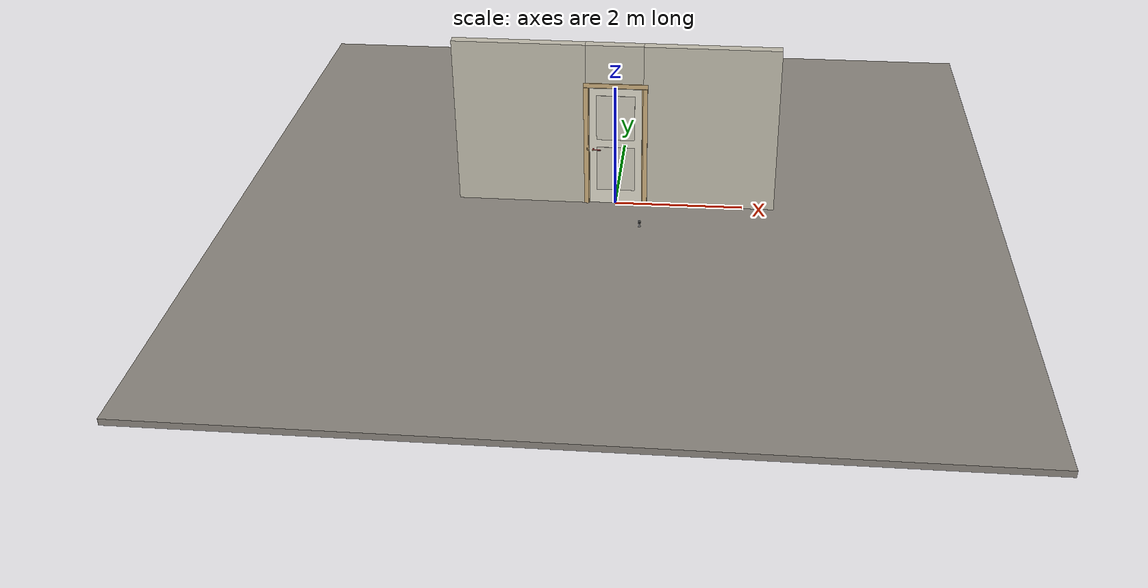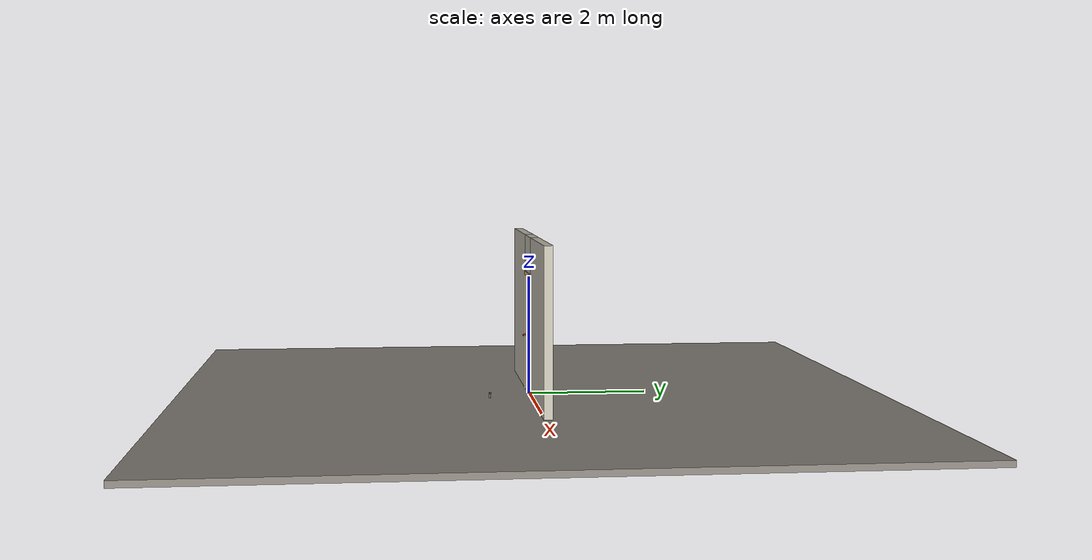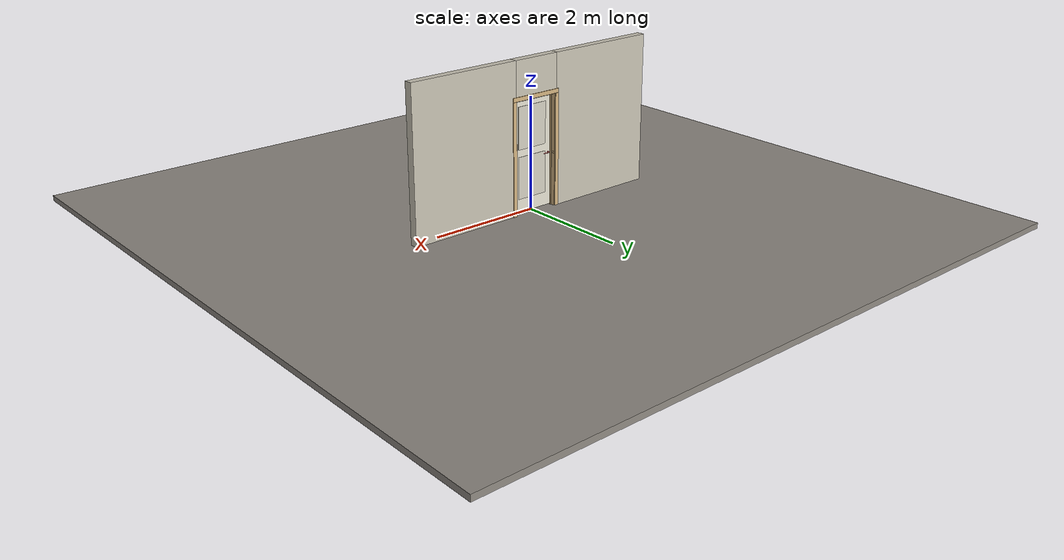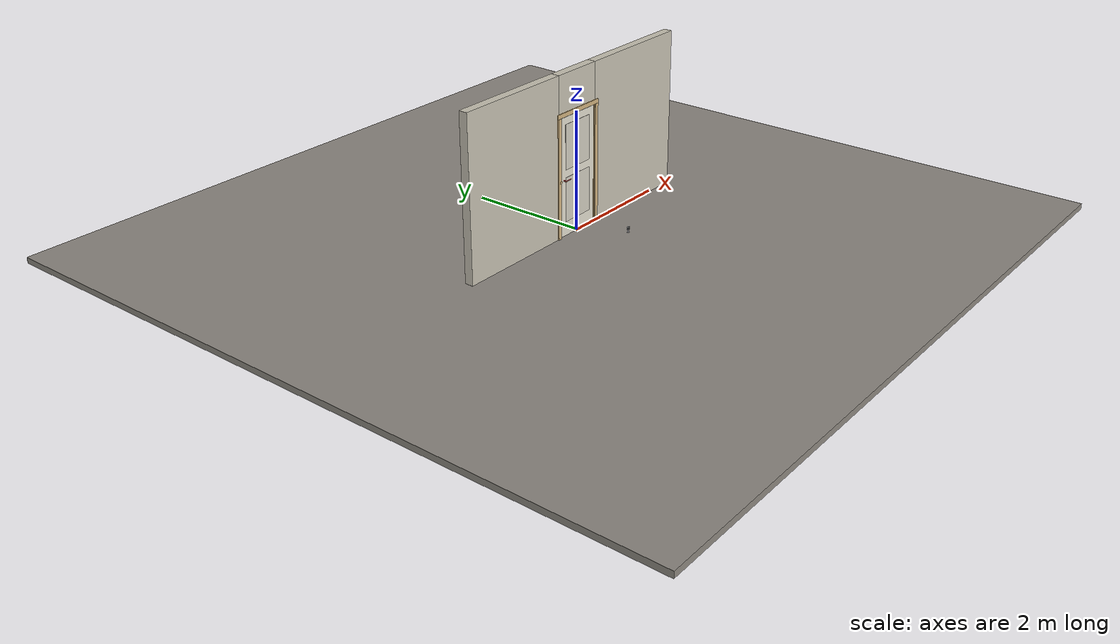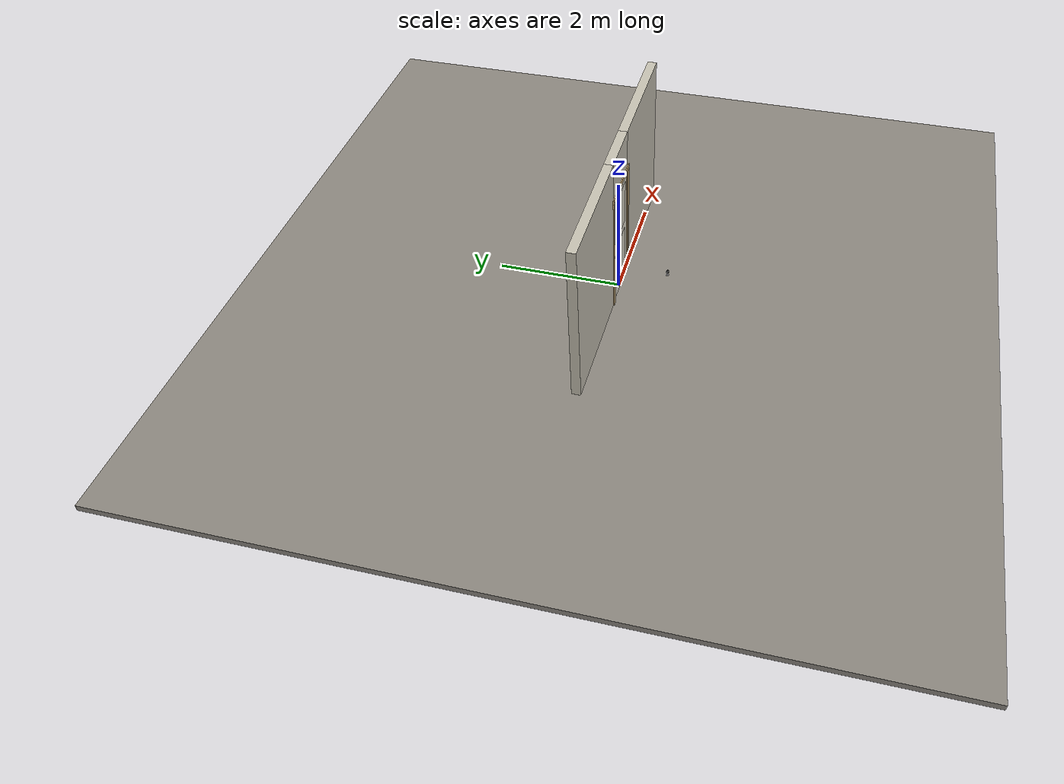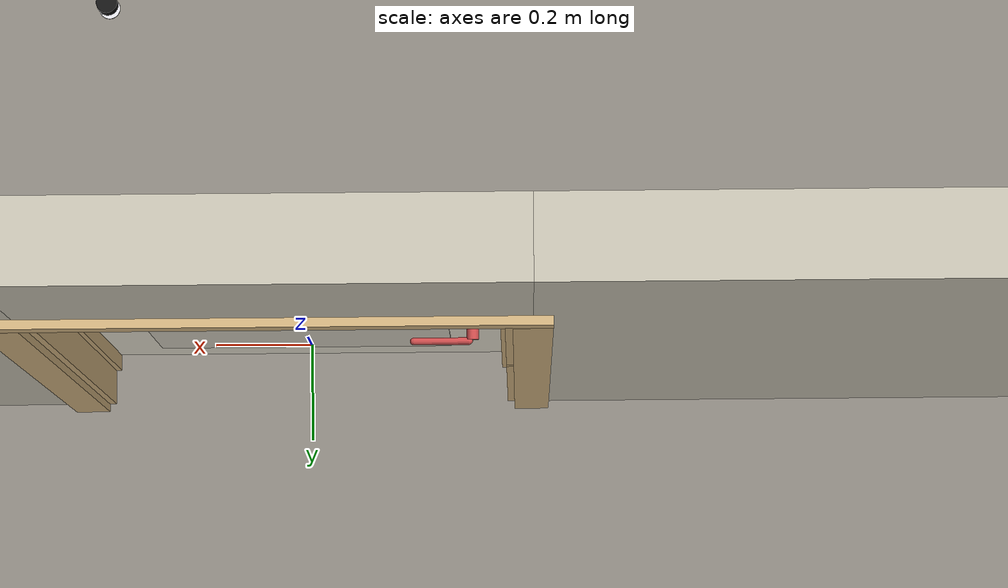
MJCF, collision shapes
<?xml version="1.0" ?>
<mujoco model="db0394_swing_single_full">
  <compiler angle="radian" meshdir="../../hardware" texturedir="../../textures" autolimits="true" inertiafromgeom="false"/>
  <option timestep="0.002" integrator="implicitfast" cone="elliptic" impratio="10" noslip_iterations="3">
    <flag multiccd="enable"/>
  </option>
  <size memory="16M"/>
  <default>
    <geom condim="4" solref="0.005 1" solimp="0.95 0.99 0.001"/>
    <joint solreflimit="0.005 1" solimplimit="0.95 0.99 0.001"/>
    <tendon solreflimit="0.005 1"/>
    <equality solref="0.002 1"/>
  </default>
  <visual>
    <headlight ambient="0.4 0.4 0.4" diffuse="0.7 0.7 0.7" specular="0.2 0.2 0.2"/>
    <quality shadowsize="4096"/>
    <map znear="0.01" zfar="60"/>
  </visual>
  <asset>
    <mesh name="hinge_e3fd49fe13" file="hinge_e3fd49fe13.obj"/>
    <mesh name="hinge_jamb_e47eb19c39" file="hinge_jamb_e47eb19c39.obj"/>
    <mesh name="lever_57205841c3" file="lever_57205841c3.obj"/>
    <material name="mat_floor" rgba="0.55 0.53 0.5 1" specular="0.2" shininess="0.15" reflectance="0"/>
    <material name="mat_wall" rgba="0.78 0.76 0.7 1" specular="0.2" shininess="0.1" reflectance="0"/>
    <material name="mat_leaf" rgba="0.9 0.88 0.82 1" specular="0.2" shininess="0.63" reflectance="0"/>
    <material name="mat_leaf_panel" rgba="0.828 0.81 0.754 1" specular="0.2" shininess="0.63" reflectance="0"/>
    <material name="mat_hinge" rgba="0.65 0.66 0.68 1" specular="0.74" shininess="0.5" reflectance="0.36"/>
    <material name="mat_op_black_matte_metal" rgba="0.05 0.05 0.05 1" specular="0.38" shininess="0.3" reflectance="0.12"/>
    <material name="mat_trim" rgba="0.85 0.66 0.3 1" specular="0.8" shininess="0.75" reflectance="0.4"/>
    <material name="mat_bolt" rgba="0.85 0.66 0.3 1" specular="0.8" shininess="0.75" reflectance="0.4"/>
    <material name="mat_frame" rgba="0.82 0.7 0.5 1" specular="0.2" shininess="0.45" reflectance="0"/>
    <material name="mat_bumper_stop" rgba="0.08 0.08 0.08 1" specular="0.2" shininess="0.1" reflectance="0"/>
    <material name="mat_stop_base" rgba="0.9 0.9 0.92 1" specular="0.8" shininess="0.9" reflectance="0.4"/>
    <texture name="skybox" type="skybox" builtin="gradient" rgb1="0.6 0.7 0.85" rgb2="0.9 0.92 0.95" width="256" height="256"/>
  </asset>
  <worldbody>
    <light name="sun" pos="1.5 -2.5 4" dir="-0.3 0.5 -0.8" directional="true" diffuse="0.8 0.8 0.8" specular="0.3 0.3 0.3" castshadow="true"/>
    <light name="fill" pos="-1.5 2.5 3" dir="0.3 -0.5 -0.7" directional="true" diffuse="0.35 0.35 0.4" castshadow="false"/>
    <camera name="robot_view" pos="0 -2.450125 1.698475" xyaxes="1 0 0 0 0.26963 0.962964" fovy="52"/>
    <camera name="far_view" pos="0 2.546125 1.698475" xyaxes="-1 0 0 0 -0.26963 0.962964" fovy="52"/>
    <camera name="iso" pos="-1.898575 -2.050425 2.098175" xyaxes="0.741536 -0.670913 0 0.242917 0.268487 0.932151" fovy="46"/>
    <camera name="detail_handle" pos="-0.07 -0.8725 1.245" xyaxes="0.97561 0.219512 0 -0.070934 0.315262 0.94635" fovy="38"/>
    <geom name="floor" type="box" size="6 6 0.05" pos="0 0 -0.05" material="mat_floor" group="0" contype="1" conaffinity="1" friction="0.8 0.005 0.0001" density="2400"/>
    <geom name="wall_left" type="box" size="1.0205 0.0725 1.35" pos="-1.4795 0.048 1.35" material="mat_wall" group="0" contype="1" conaffinity="1" friction="0.6 0.005 0.0001" density="800"/>
    <geom name="wall_right" type="box" size="1.0355 0.0725 1.35" pos="1.4645 0.048 1.35" material="mat_wall" group="0" contype="1" conaffinity="1" friction="0.6 0.005 0.0001" density="800"/>
    <geom name="wall_header" type="box" size="0.444 0.0725 0.3265" pos="-0.015 0.048 2.3735" material="mat_wall" group="0" contype="1" conaffinity="1" friction="0.6 0.005 0.0001" density="800"/>
    <geom name="hinge_0_jamb" type="mesh" mesh="hinge_jamb_e47eb19c39" pos="0.407 -0.0245 0.259" quat="0 0 1 0" material="mat_hinge" group="1" contype="0" conaffinity="0" density="7850"/>
    <geom name="hinge_1_jamb" type="mesh" mesh="hinge_jamb_e47eb19c39" pos="0.407 -0.0245 1.814" quat="0 0 1 0" material="mat_hinge" group="1" contype="0" conaffinity="0" density="7850"/>
    <geom name="jamb_hinge" type="box" size="0.0095 0.0725 0.999" pos="0.4195 0.048 0.999" material="mat_frame" group="0" contype="1" conaffinity="1" friction="0.6 0.005 0.0001" density="400"/>
    <geom name="strike_965_wall_n" type="box" size="0.0245 0.056325 0.0167" pos="-0.4345 0.064175 0.965" material="mat_frame" group="0" contype="1" conaffinity="1" friction="0.6 0.005 0.0001" density="400"/>
    <geom name="strike_965_wall_p" type="box" size="0.0245 0.008 0.0167" pos="-0.4345 -0.01585 0.965" material="mat_frame" group="0" contype="1" conaffinity="1" friction="0.6 0.005 0.0001" density="400"/>
    <geom name="strike_965_ramp" type="box" size="0.0245 0.01649 0.0167" pos="-0.439136 -0.028673 0.965" quat="0.977148 0 0 -0.212558" material="mat_frame" group="0" contype="1" conaffinity="1" friction="0.12 0.005 0.0001" density="400"/>
    <geom name="strike_965_back" type="box" size="0.01615 0.00785 0.0167" pos="-0.44285 0 0.965" material="mat_frame" group="0" contype="1" conaffinity="1" friction="0.6 0.005 0.0001" density="400"/>
    <geom name="jamb_strike_0" type="box" size="0.0245 0.0725 0.47415" pos="-0.4345 0.048 0.47415" material="mat_frame" group="0" contype="1" conaffinity="1" friction="0.6 0.005 0.0001" density="400"/>
    <geom name="jamb_strike_1" type="box" size="0.0245 0.0725 0.50815" pos="-0.4345 0.048 1.48985" material="mat_frame" group="0" contype="1" conaffinity="1" friction="0.6 0.005 0.0001" density="400"/>
    <geom name="jamb_head" type="box" size="0.444 0.0725 0.0095" pos="-0.015 0.048 2.0075" material="mat_frame" group="0" contype="1" conaffinity="1" friction="0.6 0.005 0.0001" density="400"/>
    <geom name="head_stud" type="box" size="0.444 0.0725 0.015" pos="-0.015 0.048 2.032" material="mat_wall" group="0" contype="1" conaffinity="1" friction="0.6 0.005 0.0001" density="500"/>
    <geom name="stop_hinge" type="box" size="0.0055 0.016 0.999" pos="0.4045 0.034 0.999" material="mat_frame" group="0" contype="1" conaffinity="1" friction="0.6 0.005 0.0001" density="400"/>
    <geom name="stop_strike" type="box" size="0.0055 0.016 0.999" pos="-0.4045 0.034 0.999" material="mat_frame" group="0" contype="1" conaffinity="1" friction="0.6 0.005 0.0001" density="400"/>
    <geom name="stop_head" type="box" size="0.41 0.016 0.0055" pos="0 0.034 1.9925" material="mat_frame" group="0" contype="1" conaffinity="1" friction="0.6 0.005 0.0001" density="400"/>
    <geom name="casing_l_n" type="box" size="0.035 0.008 1.0085" pos="-0.459 -0.0325 0.999" material="mat_frame" group="2" contype="0" conaffinity="0" density="400"/>
    <geom name="casing_r_n" type="box" size="0.035 0.008 1.0085" pos="0.459 -0.0325 0.999" material="mat_frame" group="2" contype="0" conaffinity="0" density="400"/>
    <geom name="casing_h_n" type="box" size="0.494 0.008 0.035" pos="0 -0.0325 2.047" material="mat_frame" group="2" contype="0" conaffinity="0" density="400"/>
    <geom name="casing_l_p" type="box" size="0.035 0.008 1.0085" pos="-0.459 0.1285 0.999" material="mat_frame" group="2" contype="0" conaffinity="0" density="400"/>
    <geom name="casing_r_p" type="box" size="0.035 0.008 1.0085" pos="0.459 0.1285 0.999" material="mat_frame" group="2" contype="0" conaffinity="0" density="400"/>
    <geom name="casing_h_p" type="box" size="0.494 0.008 0.035" pos="0 0.1285 2.047" material="mat_frame" group="2" contype="0" conaffinity="0" density="400"/>
    <geom name="door_stop_base" type="cylinder" size="0.022 0.003" pos="0.423 -0.71555 0.003" material="mat_stop_base" group="0" contype="1" conaffinity="1" friction="0.6 0.005 0.0001" density="7850"/>
    <geom name="door_stop_post" type="cylinder" size="0.012 0.0245" pos="0.423 -0.71555 0.0305" material="mat_stop_base" group="0" contype="1" conaffinity="1" friction="0.6 0.005 0.0001" density="7850"/>
    <geom name="door_stop_bumper" type="cylinder" size="0.022 0.02" pos="0.423 -0.71555 0.075" material="mat_bumper_stop" group="0" contype="1" conaffinity="1" friction="0.6 0.005 0.0001" density="1100"/>
    <site name="approach_point" pos="0 -1.5 0" quat="1 0 0 0" size="0.05" rgba="0.2 0.9 0.2 0.5" group="4"/>
    <site name="goal_point" pos="0 1.5 0" quat="1 0 0 0" size="0.05" rgba="0.2 0.9 0.2 0.5" group="4"/>
    <site name="door_plane_center" pos="0 0 0.999" quat="1 0 0 0" size="0.02" rgba="0.2 0.9 0.2 0.5" group="4"/>
    <body name="leaf" pos="0.41 0 0">
      <inertial pos="-0.395226 -0.000601 1.002778" mass="12.36456" quat="-0.498522 -0.500554 -0.499472 0.501446" diaginertia="0.730628833 4.180432149 4.908272006"/>
      <joint name="leaf_hinge" type="hinge" axis="0 0 1" pos="-0.003 -0.0245 0" limited="true" range="0 1.570796" damping="0.206618" frictionloss="0.156141" armature="0.02"/>
      <geom name="leaf_slab" type="box" size="0.4065 0.0175 0.9925" pos="-0.4095 0 1.0015" material="mat_leaf" group="0" contype="1" conaffinity="1" friction="0.35 0.005 0.0001" density="1"/>
      <geom name="leaf_panel_0_n" type="box" size="0.2965 0.003 0.37435" pos="-0.4095 -0.0205 0.6217" material="mat_leaf_panel" group="1" contype="0" conaffinity="0" density="1"/>
      <geom name="leaf_panel_0_p" type="box" size="0.2965 0.003 0.37435" pos="-0.4095 0.0205 0.6217" material="mat_leaf_panel" group="1" contype="0" conaffinity="0" density="1"/>
      <geom name="leaf_panel_1_n" type="box" size="0.2965 0.003 0.37435" pos="-0.4095 -0.0205 1.5004" material="mat_leaf_panel" group="1" contype="0" conaffinity="0" density="1"/>
      <geom name="leaf_panel_1_p" type="box" size="0.2965 0.003 0.37435" pos="-0.4095 0.0205 1.5004" material="mat_leaf_panel" group="1" contype="0" conaffinity="0" density="1"/>
      <geom name="hinge_0" type="mesh" mesh="hinge_e3fd49fe13" pos="-0.003 -0.0245 0.259" quat="0 0 1 0" material="mat_hinge" group="1" contype="0" conaffinity="0" density="7850"/>
      <geom name="hinge_1" type="mesh" mesh="hinge_e3fd49fe13" pos="-0.003 -0.0245 1.814" quat="0 0 1 0" material="mat_hinge" group="1" contype="0" conaffinity="0" density="7850"/>
      <geom name="leaf_latch_bolt_faceplate" type="box" size="0.0006 0.01235 0.0267" pos="-0.8154 0 0.965" material="mat_bolt" group="1" contype="0" conaffinity="0" density="8500"/>
      <site name="leaf_edge_mid" pos="-0.816 0 0.9925" quat="1 0 0 0" size="0.02" rgba="0.2 0.9 0.2 0.5" group="4"/>
      <body name="leaf_handle" pos="-0.756 0 0.965">
        <inertial pos="0.018424 -0.000802 0" mass="0.806483" quat="0.703814 0 0 -0.710384" diaginertia="0.001006388 0.002288313 0.003190091"/>
        <joint name="leaf_handle_hinge" type="hinge" axis="0 1 0" limited="true" range="0 0.87" damping="0.212417" frictionloss="0.042" stiffness="1" springref="-0.35" armature="0.01"/>
        <geom name="leaf_handle_spindle" type="cylinder" size="0.006 0.0255" pos="0 0 0" quat="0.707107 -0.707107 0 0" material="mat_op_black_matte_metal" group="1" contype="0" conaffinity="0" density="7850"/>
        <geom name="leaf_handle_lever_n" type="mesh" mesh="lever_57205841c3" pos="0 -0.0175 0" quat="0 0 -0.707107 0.707107" material="mat_op_black_matte_metal" group="1" contype="0" conaffinity="0" density="3000"/>
        <geom name="leaf_handle_lever_col_n" type="capsule" size="0.007 0.053" pos="0.06 -0.0725 0" quat="0.707107 0 0.707107 0" material="mat_op_black_matte_metal" group="3" contype="1" conaffinity="1" rgba="0.8 0.3 0.3 0.25" friction="0.7 0.01 0.0001" density="3000"/>
        <geom name="leaf_handle_hub_col_n" type="cylinder" size="0.012 0.022" pos="0 -0.0475 0" quat="0.707107 -0.707107 0 0" material="mat_op_black_matte_metal" group="3" contype="1" conaffinity="1" rgba="0.8 0.3 0.3 0.25" friction="0.6 0.005 0.0001" density="3000"/>
        <geom name="leaf_handle_turn_button_n" type="cylinder" size="0.006 0.005" pos="0 -0.0805 0" quat="0.707107 -0.707107 0 0" material="mat_trim" group="1" contype="0" conaffinity="0" density="7100"/>
        <geom name="leaf_handle_lever_p" type="mesh" mesh="lever_57205841c3" pos="0 0.0175 0" quat="0 0 0.707107 0.707107" material="mat_op_black_matte_metal" group="1" contype="0" conaffinity="0" density="3000"/>
        <geom name="leaf_handle_lever_col_p" type="capsule" size="0.007 0.053" pos="0.06 0.0725 0" quat="0.707107 0 0.707107 0" material="mat_op_black_matte_metal" group="3" contype="1" conaffinity="1" rgba="0.8 0.3 0.3 0.25" friction="0.7 0.01 0.0001" density="3000"/>
        <geom name="leaf_handle_hub_col_p" type="cylinder" size="0.012 0.022" pos="0 0.0475 0" quat="0.707107 -0.707107 0 0" material="mat_op_black_matte_metal" group="3" contype="1" conaffinity="1" rgba="0.8 0.3 0.3 0.25" friction="0.6 0.005 0.0001" density="3000"/>
        <site name="leaf_handle_grip_n" pos="0.096 -0.0725 0" quat="1 0 0 0" size="0.012" rgba="0.2 0.9 0.2 0.5" group="4"/>
        <site name="leaf_handle_grip_p" pos="0.096 0.0725 0" quat="1 0 0 0" size="0.012" rgba="0.2 0.9 0.2 0.5" group="4"/>
      </body>
      <body name="leaf_latch_bolt" pos="-0.816 0 0.965">
        <inertial pos="0.00865 0 0" mass="0.041419" quat="0.92388 0.382683 0 0" diaginertia="0.000000798 0.000005598 0.000005598"/>
        <joint name="leaf_latch_bolt_slide" type="slide" axis="1 0 0" limited="true" range="0 0.0127" damping="2" frictionloss="0.3" stiffness="300" springref="-0.008333" armature="0.1"/>
        <geom name="leaf_latch_bolt_capsule" type="capsule" size="0.00635 0.015" pos="0.00865 0 0" quat="0.707107 0 -0.707107 0" material="mat_bolt" group="0" contype="1" conaffinity="1" friction="0.2 0.005 0.0001" density="8500"/>
      </body>
    </body>
  </worldbody>
  <tendon>
    <fixed name="leaf_latch_bolt_coupling" limited="true" range="0 10">
      <joint joint="leaf_latch_bolt_slide" coef="1"/>
      <joint joint="leaf_handle_hinge" coef="-0.015679"/>
    </fixed>
  </tendon>
  <sensor>
    <jointpos name="leaf_hinge_pos" joint="leaf_hinge"/>
    <jointvel name="leaf_hinge_vel" joint="leaf_hinge"/>
    <jointpos name="leaf_handle_hinge_pos" joint="leaf_handle_hinge"/>
    <jointvel name="leaf_handle_hinge_vel" joint="leaf_handle_hinge"/>
    <jointpos name="leaf_latch_bolt_slide_pos" joint="leaf_latch_bolt_slide"/>
    <jointvel name="leaf_latch_bolt_slide_vel" joint="leaf_latch_bolt_slide"/>
  </sensor>
</mujoco>
